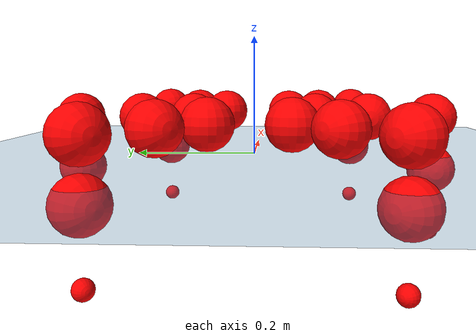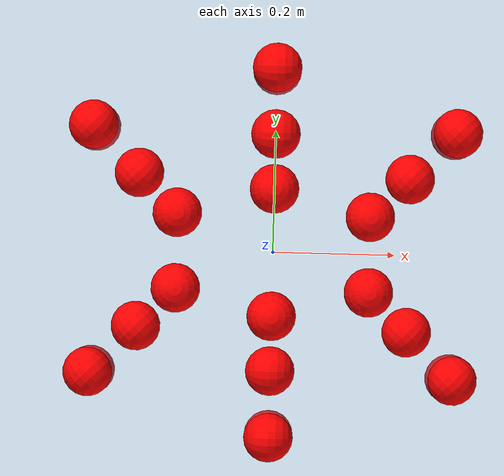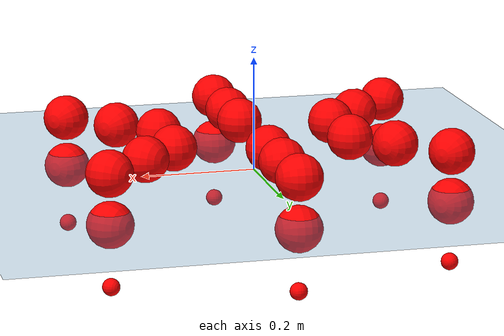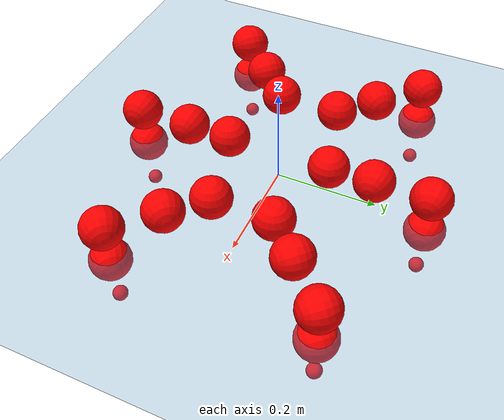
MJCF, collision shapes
<mujoco model="Golem">
  <compiler angle="radian" assetdir="assets" balanceinertia="true" inertiafromgeom="false"/>

  <option timestep="0.005" density="1.2" viscosity="2e-05"/>

  <size nkey="1"/>

  <visual>
    <quality shadowsize="8192"/>
    <map shadowclip="0.5"/>
  </visual>

  <default>
    <default class="/">
      <joint armature="0.01" damping="0.01" frictionloss="0.01"/>
      <geom contype="0" conaffinity="0" group="1" solref="-1000 -80"/>
      <site size="0.01 0.005 0.005" group="5"/>
      <general forcelimited="true" biastype="affine" gainprm="25" biasprm="0 -25 -0.5"/>
      <default class="visual">
        <geom type="mesh" group="2"/>
      </default>
      <default class="collision">
        <geom group="3"/>
      </default>
      <default class="foot">
        <geom size="0.01 0 0" condim="6" group="4" priority="1" solimp="0.015 1 0.01"/>
      </default>
      <default class="reward_collision_sphere">
        <geom group="5" rgba="1 0 0 1"/>
      </default>
    </default>
  </default>

  <asset>
    <texture type="skybox" colorspace="auto" name="//unnamed_texture_0" builtin="gradient" rgb1="0.95 0.95 0.95" rgb2="0.95 0.95 0.95" width="100" height="600"/>
    <texture type="2d" colorspace="auto" name="texplane" builtin="checker" rgb1="0.345 0.575 0.748" rgb2="0.345 0.575 0.748" markrgb="1 1 1" width="512" height="512"/>
    <material name="MatPlane" class="/" texture="texplane" texuniform="true" texrepeat="2 2" specular="0.9"/>
    <mesh name="body" class="/" file="body.stl" scale="0.001 0.001 0.001"/>
    <mesh name="coxa" class="/" file="coxa.stl" scale="0.001 0.001 0.001"/>
    <mesh name="femur" class="/" file="femur.stl" scale="0.001 0.001 0.001"/>
    <mesh name="tibia" class="/" file="tibia.stl" scale="0.001 0.001 0.001"/>
    <mesh name="tarsus" class="/" file="tarsus.stl" scale="0.001 0.001 0.001"/>
  </asset>

  <worldbody>
    <geom name="floor" class="/" size="100 100 0.125" type="plane" group="0" material="MatPlane"/>
    <light name="toplight_shadow" class="/" pos="0 0 5" dir="0.0990148 0.0990148 -0.990148" type="directional" ambient="0.04 0.04 0.04" diffuse="0.55 0.55 0.55" specular="0.12 0.12 0.12"/>
    <light name="toplight_fill" class="/" pos="0 0 5" dir="0.0990148 0.0990148 -0.990148" type="directional" castshadow="false" ambient="0.04 0.04 0.04" diffuse="0.3 0.3 0.3" specular="0.08 0.08 0.08"/>
    <body name="trunk">
      <inertial pos="0 0 0" mass="3.7" diaginertia="0.01 0.01 0.01"/>
      <joint name="//unnamed_joint_0" type="free"/>
      <geom name="//unnamed_geom_1" class="/" pos="0 0 0.064" quat="1 0 0 0" type="mesh" rgba="0.9 0.9 0.9 1" mesh="body"/>
      <site name="imu" class="/" pos="0.13 0 0.1"/>
      <camera name="track" class="/" pos="0 -2 0" quat="0.707107 0.707107 0 0" mode="trackcom"/>
      <camera name="ego_camera" class="/" pos="0.13 0 0.1" quat="-0.5 -0.5 0.5 0.5"/>
      <body name="coxa_RR" pos="-0.1778 -0.0825 0.064" quat="0.382683 0 0 -0.92388">
        <inertial pos="0 0 0" mass="0.2" diaginertia="0.01 0.01 0.01"/>
        <joint name="coxa_joint_RR" class="/" pos="0 0 0" axis="0 0 -1" range="-3.14 3.14"/>
        <geom name="//unnamed_geom_2" class="/" type="mesh" rgba="0.2 0.2 0.2 1" mesh="coxa"/>
        <geom name="//unnamed_geom_3" class="reward_collision_sphere" size="0.04" pos="-0.03 0 0"/>
        <body name="femur_RR" pos="0.05893 0 0" quat="0.5 -0.5 0.5 0.5">
          <inertial pos="0 0 0" mass="0.2" diaginertia="0.01 0.01 0.01"/>
          <joint name="femur_joint_RR" class="/" pos="0 0 0" axis="0 0 -1" range="-3.14 3.14"/>
          <geom name="//unnamed_geom_4" class="/" type="mesh" rgba="0.9 0.9 0.9 1" mesh="femur"/>
          <geom name="//unnamed_geom_5" class="reward_collision_sphere" size="0.04"/>
          <body name="tibia_RR" pos="0 -0.10798 0" quat="0 1 0 0">
            <inertial pos="0 0 0" mass="0.2" diaginertia="0.01 0.01 0.01"/>
            <joint name="tibia_joint_RR" class="/" pos="0 0 0" axis="0 0 1" range="-3.14 3.14"/>
            <geom name="//unnamed_geom_6" class="/" type="mesh" rgba="0.2 0.2 0.2 1" mesh="tibia"/>
            <geom name="//unnamed_geom_7" class="reward_collision_sphere" size="0.04"/>
            <body name="tarsus_RR" pos="0.08774 0 0">
              <inertial pos="0.060325 0 0" quat="0.5 0.5 0.5 0.5" mass="0.2" diaginertia="0.01 0.01 0.01"/>
              <joint name="tarsus_joint_RR" class="/" pos="0 0 0" axis="0 0 1" range="-3.14 3.14"/>
              <geom name="//unnamed_geom_8" class="/" type="mesh" rgba="0.9 0.9 0.9 1" mesh="tarsus"/>
              <geom name="foot_1" class="foot" pos="0.112 0 0" quat="0 -0.707107 0 0.707107"/>
              <geom name="//unnamed_geom_10" class="reward_collision_sphere" size="0.04"/>
              <geom name="//unnamed_geom_11" class="reward_collision_sphere" size="0.015" pos="0.1075 0 0"/>
              <site name="foot_1" class="foot" pos="0.112 0 0" quat="0 -0.707107 0 0.707107"/>
            </body>
          </body>
        </body>
      </body>
      <body name="coxa_RM" pos="0 -0.13335 0.064" quat="0.707107 0 0 -0.707107">
        <inertial pos="0 0 0" mass="0.2" diaginertia="0.01 0.01 0.01"/>
        <joint name="coxa_joint_RM" class="/" pos="0 0 0" axis="0 0 -1" range="-3.14 3.14"/>
        <geom name="//unnamed_geom_12" class="/" type="mesh" rgba="0.2 0.2 0.2 1" mesh="coxa"/>
        <geom name="//unnamed_geom_13" class="reward_collision_sphere" size="0.04" pos="-0.03 0 0"/>
        <body name="femur_RM" pos="0.05893 0 0" quat="0.5 -0.5 0.5 0.5">
          <inertial pos="0 0 0" mass="0.2" diaginertia="0.01 0.01 0.01"/>
          <joint name="femur_joint_RM" class="/" pos="0 0 0" axis="0 0 -1" range="-3.14 3.14"/>
          <geom name="//unnamed_geom_14" class="/" type="mesh" rgba="0.9 0.9 0.9 1" mesh="femur"/>
          <geom name="//unnamed_geom_15" class="reward_collision_sphere" size="0.04"/>
          <body name="tibia_RM" pos="0 -0.10798 0" quat="0 1 0 0">
            <inertial pos="0 0 0" mass="0.2" diaginertia="0.01 0.01 0.01"/>
            <joint name="tibia_joint_RM" class="/" pos="0 0 0" axis="0 0 1" range="-3.14 3.14"/>
            <geom name="//unnamed_geom_16" class="/" type="mesh" rgba="0.2 0.2 0.2 1" mesh="tibia"/>
            <geom name="//unnamed_geom_17" class="reward_collision_sphere" size="0.04"/>
            <body name="tarsus_RM" pos="0.08774 0 0">
              <inertial pos="0.060325 0 0" quat="0.5 0.5 0.5 0.5" mass="0.2" diaginertia="0.01 0.01 0.01"/>
              <joint name="tarsus_joint_RM" class="/" pos="0 0 0" axis="0 0 1" range="-3.14 3.14"/>
              <geom name="//unnamed_geom_18" class="/" type="mesh" rgba="0.9 0.9 0.9 1" mesh="tarsus"/>
              <geom name="foot_2" class="foot" pos="0.112 0 0" quat="0 -0.707107 0 0.707107"/>
              <geom name="//unnamed_geom_20" class="reward_collision_sphere" size="0.04"/>
              <geom name="//unnamed_geom_21" class="reward_collision_sphere" size="0.015" pos="0.1075 0 0"/>
              <site name="foot_2" class="foot" pos="0.112 0 0" quat="0 -0.707107 0 0.707107"/>
            </body>
          </body>
        </body>
      </body>
      <body name="coxa_RF" pos="0.1778 -0.0825 0.064" quat="0.92388 0 0 -0.382683">
        <inertial pos="0 0 0" mass="0.2" diaginertia="0.01 0.01 0.01"/>
        <joint name="coxa_joint_RF" class="/" pos="0 0 0" axis="0 0 -1" range="-3.14 3.14"/>
        <geom name="//unnamed_geom_22" class="/" type="mesh" rgba="0.2 0.2 0.2 1" mesh="coxa"/>
        <geom name="//unnamed_geom_23" class="reward_collision_sphere" size="0.04" pos="-0.03 0 0"/>
        <body name="femur_RF" pos="0.05893 0 0" quat="0.5 -0.5 0.5 0.5">
          <inertial pos="0 0 0" mass="0.2" diaginertia="0.01 0.01 0.01"/>
          <joint name="femur_joint_RF" class="/" pos="0 0 0" axis="0 0 -1" range="-3.14 3.14"/>
          <geom name="//unnamed_geom_24" class="/" type="mesh" rgba="0.9 0.9 0.9 1" mesh="femur"/>
          <geom name="//unnamed_geom_25" class="reward_collision_sphere" size="0.04"/>
          <body name="tibia_RF" pos="0 -0.10798 0" quat="0 1 0 0">
            <inertial pos="0 0 0" mass="0.2" diaginertia="0.01 0.01 0.01"/>
            <joint name="tibia_joint_RF" class="/" pos="0 0 0" axis="0 0 1" range="-3.14 3.14"/>
            <geom name="//unnamed_geom_26" class="/" type="mesh" rgba="0.2 0.2 0.2 1" mesh="tibia"/>
            <geom name="//unnamed_geom_27" class="reward_collision_sphere" size="0.04"/>
            <body name="tarsus_RF" pos="0.08774 0 0">
              <inertial pos="0.060325 0 0" quat="0.5 0.5 0.5 0.5" mass="0.2" diaginertia="0.01 0.01 0.01"/>
              <joint name="tarsus_joint_RF" class="/" pos="0 0 0" axis="0 0 1" range="-3.14 3.14"/>
              <geom name="//unnamed_geom_28" class="/" type="mesh" rgba="0.9 0.9 0.9 1" mesh="tarsus"/>
              <geom name="foot_3" class="foot" pos="0.112 0 0" quat="0 -0.707107 0 0.707107"/>
              <geom name="//unnamed_geom_30" class="reward_collision_sphere" size="0.04"/>
              <geom name="//unnamed_geom_31" class="reward_collision_sphere" size="0.015" pos="0.1075 0 0"/>
              <site name="foot_3" class="foot" pos="0.112 0 0" quat="0 -0.707107 0 0.707107"/>
            </body>
          </body>
        </body>
      </body>
      <body name="coxa_LR" pos="-0.1778 0.0825 0.064" quat="0.382683 0 0 0.92388">
        <inertial pos="0 0 0" mass="0.2" diaginertia="0.01 0.01 0.01"/>
        <joint name="coxa_joint_LR" class="/" pos="0 0 0" axis="0 0 -1" range="-3.14 3.14"/>
        <geom name="//unnamed_geom_32" class="/" type="mesh" rgba="0.2 0.2 0.2 1" mesh="coxa"/>
        <geom name="//unnamed_geom_33" class="reward_collision_sphere" size="0.04" pos="-0.03 0 0"/>
        <body name="femur_LR" pos="0.05893 0 0" quat="0.5 -0.5 0.5 0.5">
          <inertial pos="0 0 0" mass="0.2" diaginertia="0.01 0.01 0.01"/>
          <joint name="femur_joint_LR" class="/" pos="0 0 0" axis="0 0 1" range="-3.14 3.14"/>
          <geom name="//unnamed_geom_34" class="/" type="mesh" rgba="0.9 0.9 0.9 1" mesh="femur"/>
          <geom name="//unnamed_geom_35" class="reward_collision_sphere" size="0.04"/>
          <body name="tibia_LR" pos="0 -0.10798 0" quat="0 1 0 0">
            <inertial pos="0 0 0" mass="0.2" diaginertia="0.01 0.01 0.01"/>
            <joint name="tibia_joint_LR" class="/" pos="0 0 0" axis="0 0 -1" range="-3.14 3.14"/>
            <geom name="//unnamed_geom_36" class="/" type="mesh" rgba="0.2 0.2 0.2 1" mesh="tibia"/>
            <geom name="//unnamed_geom_37" class="reward_collision_sphere" size="0.04"/>
            <body name="tarsus_LR" pos="0.08774 0 0">
              <inertial pos="0.060325 0 0" quat="0.5 0.5 0.5 0.5" mass="0.2" diaginertia="0.01 0.01 0.01"/>
              <joint name="tarsus_joint_LR" class="/" pos="0 0 0" axis="0 0 -1" range="-3.14 3.14"/>
              <geom name="//unnamed_geom_38" class="/" type="mesh" rgba="0.9 0.9 0.9 1" mesh="tarsus"/>
              <geom name="foot_4" class="foot" pos="0.112 0 0" quat="0.707107 0 -0.707107 0"/>
              <geom name="//unnamed_geom_40" class="reward_collision_sphere" size="0.04"/>
              <geom name="//unnamed_geom_41" class="reward_collision_sphere" size="0.015" pos="0.1075 0 0"/>
              <site name="foot_4" class="foot" pos="0.112 0 0" quat="0.707107 0 -0.707107 0"/>
            </body>
          </body>
        </body>
      </body>
      <body name="coxa_LM" pos="0 0.13335 0.064" quat="0.707107 0 0 0.707107">
        <inertial pos="0 0 0" mass="0.2" diaginertia="0.01 0.01 0.01"/>
        <joint name="coxa_joint_LM" class="/" pos="0 0 0" axis="0 0 -1" range="-3.14 3.14"/>
        <geom name="//unnamed_geom_42" class="/" type="mesh" rgba="0.2 0.2 0.2 1" mesh="coxa"/>
        <geom name="//unnamed_geom_43" class="reward_collision_sphere" size="0.04" pos="-0.03 0 0"/>
        <body name="femur_LM" pos="0.05893 0 0" quat="0.5 -0.5 0.5 0.5">
          <inertial pos="0 0 0" mass="0.2" diaginertia="0.01 0.01 0.01"/>
          <joint name="femur_joint_LM" class="/" pos="0 0 0" axis="0 0 1" range="-3.14 3.14"/>
          <geom name="//unnamed_geom_44" class="/" type="mesh" rgba="0.9 0.9 0.9 1" mesh="femur"/>
          <geom name="//unnamed_geom_45" class="reward_collision_sphere" size="0.04"/>
          <body name="tibia_LM" pos="0 -0.10798 0" quat="0 1 0 0">
            <inertial pos="0 0 0" mass="0.2" diaginertia="0.01 0.01 0.01"/>
            <joint name="tibia_joint_LM" class="/" pos="0 0 0" axis="0 0 -1" range="-3.14 3.14"/>
            <geom name="//unnamed_geom_46" class="/" type="mesh" rgba="0.2 0.2 0.2 1" mesh="tibia"/>
            <geom name="//unnamed_geom_47" class="reward_collision_sphere" size="0.04"/>
            <body name="tarsus_LM" pos="0.08774 0 0">
              <inertial pos="0.060325 0 0" quat="0.5 0.5 0.5 0.5" mass="0.2" diaginertia="0.01 0.01 0.01"/>
              <joint name="tarsus_joint_LM" class="/" pos="0 0 0" axis="0 0 -1" range="-3.14 3.14"/>
              <geom name="//unnamed_geom_48" class="/" type="mesh" rgba="0.9 0.9 0.9 1" mesh="tarsus"/>
              <geom name="foot_5" class="foot" pos="0.112 0 0" quat="0.707107 0 -0.707107 0"/>
              <geom name="//unnamed_geom_50" class="reward_collision_sphere" size="0.04"/>
              <geom name="//unnamed_geom_51" class="reward_collision_sphere" size="0.015" pos="0.1075 0 0"/>
              <site name="foot_5" class="foot" pos="0.112 0 0" quat="0.707107 0 -0.707107 0"/>
            </body>
          </body>
        </body>
      </body>
      <body name="coxa_LF" pos="0.1778 0.0825 0.064" quat="0.92388 0 0 0.382683">
        <inertial pos="0 0 0" mass="0.2" diaginertia="0.01 0.01 0.01"/>
        <joint name="coxa_joint_LF" class="/" pos="0 0 0" axis="0 0 -1" range="-3.14 3.14"/>
        <geom name="//unnamed_geom_52" class="/" type="mesh" rgba="0.2 0.2 0.2 1" mesh="coxa"/>
        <geom name="//unnamed_geom_53" class="reward_collision_sphere" size="0.04" pos="-0.03 0 0"/>
        <body name="femur_LF" pos="0.05893 0 0" quat="0.5 -0.5 0.5 0.5">
          <inertial pos="0 0 0" mass="0.2" diaginertia="0.01 0.01 0.01"/>
          <joint name="femur_joint_LF" class="/" pos="0 0 0" axis="0 0 1" range="-3.14 3.14"/>
          <geom name="//unnamed_geom_54" class="/" type="mesh" rgba="0.9 0.9 0.9 1" mesh="femur"/>
          <geom name="//unnamed_geom_55" class="reward_collision_sphere" size="0.04"/>
          <body name="tibia_LF" pos="0 -0.10798 0" quat="0 1 0 0">
            <inertial pos="0 0 0" mass="0.2" diaginertia="0.01 0.01 0.01"/>
            <joint name="tibia_joint_LF" class="/" pos="0 0 0" axis="0 0 -1" range="-3.14 3.14"/>
            <geom name="//unnamed_geom_56" class="/" type="mesh" rgba="0.2 0.2 0.2 1" mesh="tibia"/>
            <geom name="//unnamed_geom_57" class="reward_collision_sphere" size="0.04"/>
            <body name="tarsus_LF" pos="0.08774 0 0">
              <inertial pos="0.060325 0 0" quat="0.5 0.5 0.5 0.5" mass="0.2" diaginertia="0.01 0.01 0.01"/>
              <joint name="tarsus_joint_LF" class="/" pos="0 0 0" axis="0 0 -1" range="-3.14 3.14"/>
              <geom name="//unnamed_geom_58" class="/" type="mesh" rgba="0.9 0.9 0.9 1" mesh="tarsus"/>
              <geom name="foot_6" class="foot" pos="0.112 0 0" quat="0.707107 0 -0.707107 0"/>
              <geom name="//unnamed_geom_60" class="reward_collision_sphere" size="0.04"/>
              <geom name="//unnamed_geom_61" class="reward_collision_sphere" size="0.015" pos="0.1075 0 0"/>
              <site name="foot_6" class="foot" pos="0.112 0 0" quat="0.707107 0 -0.707107 0"/>
            </body>
          </body>
        </body>
      </body>
    </body>
  </worldbody>

  <contact>
    <pair class="/" geom1="floor" geom2="foot_1" name="//unnamed_contact_0"/>
    <pair class="/" geom1="floor" geom2="foot_2" name="//unnamed_contact_1"/>
    <pair class="/" geom1="floor" geom2="foot_3" name="//unnamed_contact_2"/>
    <pair class="/" geom1="floor" geom2="foot_4" name="//unnamed_contact_3"/>
    <pair class="/" geom1="floor" geom2="foot_5" name="//unnamed_contact_4"/>
    <pair class="/" geom1="floor" geom2="foot_6" name="//unnamed_contact_5"/>
  </contact>

  <actuator>
    <general name="coxa_joint_RR" class="/" joint="coxa_joint_RR" forcerange="-7.3 7.3"/>
    <general name="femur_joint_RR" class="/" joint="femur_joint_RR" forcerange="-7.3 7.3"/>
    <general name="tibia_joint_RR" class="/" joint="tibia_joint_RR" forcerange="-7.3 7.3"/>
    <general name="tarsus_joint_RR" class="/" joint="tarsus_joint_RR" forcerange="-7.3 7.3"/>
    <general name="coxa_joint_RM" class="/" joint="coxa_joint_RM" forcerange="-7.3 7.3"/>
    <general name="femur_joint_RM" class="/" joint="femur_joint_RM" forcerange="-7.3 7.3"/>
    <general name="tibia_joint_RM" class="/" joint="tibia_joint_RM" forcerange="-7.3 7.3"/>
    <general name="tarsus_joint_RM" class="/" joint="tarsus_joint_RM" forcerange="-7.3 7.3"/>
    <general name="coxa_joint_RF" class="/" joint="coxa_joint_RF" forcerange="-7.3 7.3"/>
    <general name="femur_joint_RF" class="/" joint="femur_joint_RF" forcerange="-7.3 7.3"/>
    <general name="tibia_joint_RF" class="/" joint="tibia_joint_RF" forcerange="-7.3 7.3"/>
    <general name="tarsus_joint_RF" class="/" joint="tarsus_joint_RF" forcerange="-7.3 7.3"/>
    <general name="coxa_joint_LR" class="/" joint="coxa_joint_LR" forcerange="-7.3 7.3"/>
    <general name="femur_joint_LR" class="/" joint="femur_joint_LR" forcerange="-7.3 7.3"/>
    <general name="tibia_joint_LR" class="/" joint="tibia_joint_LR" forcerange="-7.3 7.3"/>
    <general name="tarsus_joint_LR" class="/" joint="tarsus_joint_LR" forcerange="-7.3 7.3"/>
    <general name="coxa_joint_LM" class="/" joint="coxa_joint_LM" forcerange="-7.3 7.3"/>
    <general name="femur_joint_LM" class="/" joint="femur_joint_LM" forcerange="-7.3 7.3"/>
    <general name="tibia_joint_LM" class="/" joint="tibia_joint_LM" forcerange="-7.3 7.3"/>
    <general name="tarsus_joint_LM" class="/" joint="tarsus_joint_LM" forcerange="-7.3 7.3"/>
    <general name="coxa_joint_LF" class="/" joint="coxa_joint_LF" forcerange="-7.3 7.3"/>
    <general name="femur_joint_LF" class="/" joint="femur_joint_LF" forcerange="-7.3 7.3"/>
    <general name="tibia_joint_LF" class="/" joint="tibia_joint_LF" forcerange="-7.3 7.3"/>
    <general name="tarsus_joint_LF" class="/" joint="tarsus_joint_LF" forcerange="-7.3 7.3"/>
  </actuator>

  <sensor>
    <gyro site="imu" name="imu_angular_velocity"/>
    <velocimeter site="imu" name="imu_linear_velocity"/>
    <framelinvel objtype="site" objname="foot_1" name="foot_1_global_linear_velocity"/>
    <framelinvel objtype="site" objname="foot_2" name="foot_2_global_linear_velocity"/>
    <framelinvel objtype="site" objname="foot_3" name="foot_3_global_linear_velocity"/>
    <framelinvel objtype="site" objname="foot_4" name="foot_4_global_linear_velocity"/>
    <framelinvel objtype="site" objname="foot_5" name="foot_5_global_linear_velocity"/>
    <framelinvel objtype="site" objname="foot_6" name="foot_6_global_linear_velocity"/>
  </sensor>

  <keyframe>
    <key name="home" qpos="0 0 0.1457 1 0 0 0 0 0 0 0 0 0 0 0 0 0 0 0 0 0 0 0 0 0 0 0 0 0 0 0"/>
  </keyframe>
</mujoco>
